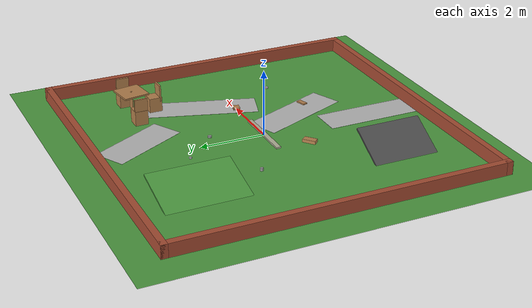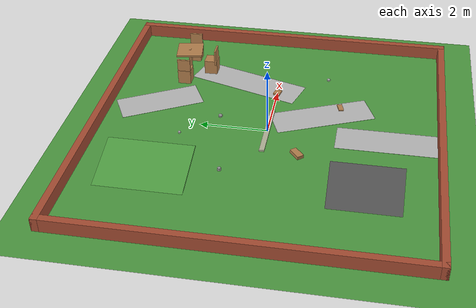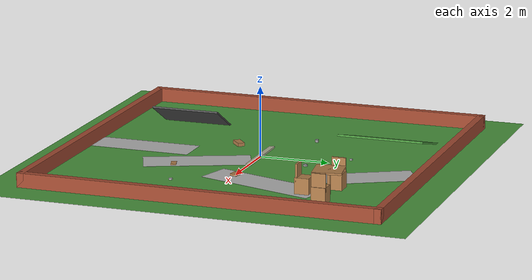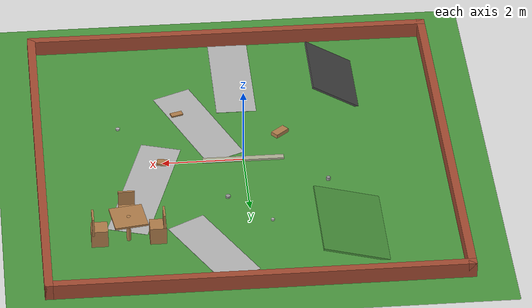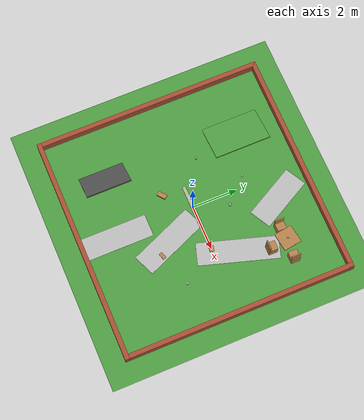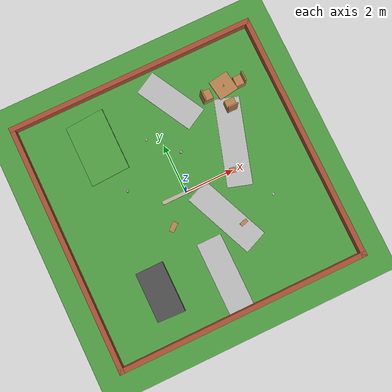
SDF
<?xml version="1.0" ?>
<sdf version="1.6">
  <world name="garden">

    <!-- Physics Engine Configuration                                        -->
    <!-- ODE solver, real-time factor 1.0, 1ms step for accurate contact     -->
    <physics type="ode">
      <real_time_update_rate>1000</real_time_update_rate>
      <max_step_size>0.001</max_step_size>
      <real_time_factor>1.0</real_time_factor>
      <ode>
        <solver>
          <type>quick</type>
          <iters>150</iters>
          <sor>1.3</sor>
        </solver>
        <constraints>
          <cfm>0.0</cfm>
          <erp>0.2</erp>
          <contact_max_correcting_vel>100</contact_max_correcting_vel>
          <contact_surface_layer>0.001</contact_surface_layer>
        </constraints>
      </ode>
    </physics>

    <!-- Lighting — Sun with shadows                                         -->
    <include>
      <uri>model://sun</uri>
    </include>

    <light name="garden_sun" type="directional">
      <pose>0 0 20 0 0 0</pose>
      <diffuse>0.9 0.9 0.85 1</diffuse>
      <specular>0.3 0.3 0.3 1</specular>
      <direction>-0.4 0.3 -1.0</direction>
      <cast_shadows>true</cast_shadows>
      <attenuation>
        <range>100</range>
      </attenuation>
    </light>

    <!-- Ambient fill light to soften shadows -->
    <light name="ambient_fill" type="directional">
      <pose>0 0 15 0 0 0</pose>
      <diffuse>0.2 0.2 0.25 1</diffuse>
      <specular>0.0 0.0 0.0 1</specular>
      <direction>0.2 -0.5 -0.8</direction>
      <cast_shadows>false</cast_shadows>
    </light>

    <!-- Ground Plane — Grass-textured flat area                             -->
    <model name="ground_plane">
      <static>true</static>
      <link name="link">
        <collision name="collision">
          <geometry>
            <plane>
              <normal>0 0 1</normal>
              <size>15 15</size>
            </plane>
          </geometry>
          <surface>
            <friction>
              <ode>
                <mu>1.0</mu>
                <mu2>1.0</mu2>
              </ode>
            </friction>
          </surface>
        </collision>
        <visual name="visual">
          <geometry>
            <plane>
              <normal>0 0 1</normal>
              <size>15 15</size>
            </plane>
          </geometry>
          <material>
            <script>
              <uri>file://media/materials/scripts/gazebo.material</uri>
              <name>Gazebo/Grass</name>
            </script>
          </material>
        </visual>
      </link>
    </model>

    <!-- Gravel Path — Winding path with lower friction (mu=0.6)             -->
    <!-- Built from several overlapping box segments to form a curve          -->

    <!-- Path segment 1: entrance from south wall heading north -->
    <model name="gravel_path_1">
      <static>true</static>
      <pose>0 -3.5 0.002 0 0 0</pose>
      <link name="link">
        <collision name="collision">
          <geometry>
            <box><size>1.0 3.0 0.004</size></box>
          </geometry>
          <surface>
            <friction>
              <ode>
                <mu>0.6</mu>
                <mu2>0.6</mu2>
              </ode>
            </friction>
          </surface>
        </collision>
        <visual name="visual">
          <geometry>
            <box><size>1.0 3.0 0.004</size></box>
          </geometry>
          <material>
            <script>
              <uri>file://media/materials/scripts/gazebo.material</uri>
              <name>Gazebo/Rocky</name>
            </script>
          </material>
        </visual>
      </link>
    </model>

    <!-- Path segment 2: curves east through the centre -->
    <model name="gravel_path_2">
      <static>true</static>
      <pose>1.0 -1.5 0.002 0 0 0.4</pose>
      <link name="link">
        <collision name="collision">
          <geometry>
            <box><size>1.0 3.0 0.004</size></box>
          </geometry>
          <surface>
            <friction>
              <ode>
                <mu>0.6</mu>
                <mu2>0.6</mu2>
              </ode>
            </friction>
          </surface>
        </collision>
        <visual name="visual">
          <geometry>
            <box><size>1.0 3.0 0.004</size></box>
          </geometry>
          <material>
            <script>
              <uri>file://media/materials/scripts/gazebo.material</uri>
              <name>Gazebo/Rocky</name>
            </script>
          </material>
        </visual>
      </link>
    </model>

    <!-- Path segment 3: continues north-east -->
    <model name="gravel_path_3">
      <static>true</static>
      <pose>2.5 1.0 0.002 0 0 -0.3</pose>
      <link name="link">
        <collision name="collision">
          <geometry>
            <box><size>1.0 3.5 0.004</size></box>
          </geometry>
          <surface>
            <friction>
              <ode>
                <mu>0.6</mu>
                <mu2>0.6</mu2>
              </ode>
            </friction>
          </surface>
        </collision>
        <visual name="visual">
          <geometry>
            <box><size>1.0 3.5 0.004</size></box>
          </geometry>
          <material>
            <script>
              <uri>file://media/materials/scripts/gazebo.material</uri>
              <name>Gazebo/Rocky</name>
            </script>
          </material>
        </visual>
      </link>
    </model>

    <!-- Path segment 4: curves west toward north wall -->
    <model name="gravel_path_4">
      <static>true</static>
      <pose>1.0 3.5 0.002 0 0 0.5</pose>
      <link name="link">
        <collision name="collision">
          <geometry>
            <box><size>1.0 2.5 0.004</size></box>
          </geometry>
          <surface>
            <friction>
              <ode>
                <mu>0.6</mu>
                <mu2>0.6</mu2>
              </ode>
            </friction>
          </surface>
        </collision>
        <visual name="visual">
          <geometry>
            <box><size>1.0 2.5 0.004</size></box>
          </geometry>
          <material>
            <script>
              <uri>file://media/materials/scripts/gazebo.material</uri>
              <name>Gazebo/Rocky</name>
            </script>
          </material>
        </visual>
      </link>
    </model>

    <!-- Gentle Slope — 15° incline for hill climbing test                    -->
    <!-- Located in the north-west corner of the garden                      -->
    <!-- EA-01 says park slopes are typically 5-15 degrees                    -->
    <model name="gentle_slope_15deg">
      <static>true</static>
      <!-- Tilted 15° around Y axis, raised so base meets ground plane -->
      <pose>-3.0 3.0 0 0 -0.2618 0</pose>
      <link name="link">
        <collision name="collision">
          <geometry>
            <box><size>3.0 2.5 0.05</size></box>
          </geometry>
          <surface>
            <friction>
              <ode>
                <mu>1.0</mu>
                <mu2>1.0</mu2>
              </ode>
            </friction>
          </surface>
        </collision>
        <visual name="visual">
          <geometry>
            <box><size>3.0 2.5 0.05</size></box>
          </geometry>
          <material>
            <script>
              <uri>file://media/materials/scripts/gazebo.material</uri>
              <name>Gazebo/GrassFloor</name>
            </script>
          </material>
        </visual>
      </link>
    </model>

    <!-- Steep Slope — 30° incline for max gradient testing                   -->
    <!-- EA-01 says max UK hillside slopes rarely exceed 30 degrees           -->
    <!-- Located south-west corner                                           -->
    <model name="steep_slope_30deg">
      <static>true</static>
      <!-- Tilted 30° around Y axis -->
      <pose>-3.0 -3.0 0 0 -0.5236 0</pose>
      <link name="link">
        <collision name="collision">
          <geometry>
            <box><size>2.5 2.0 0.05</size></box>
          </geometry>
          <surface>
            <friction>
              <ode>
                <mu>1.2</mu>
                <mu2>1.2</mu2>
              </ode>
            </friction>
          </surface>
        </collision>
        <visual name="visual">
          <geometry>
            <box><size>2.5 2.0 0.05</size></box>
          </geometry>
          <material>
            <script>
              <uri>file://media/materials/scripts/gazebo.material</uri>
              <name>Gazebo/DarkGrey</name>
            </script>
          </material>
        </visual>
      </link>
    </model>

    <!-- Obstacles — Various heights for suspension articulation testing      -->
    <!-- EA-01 specs:                                                         -->
    <!--   Phase 1 max obstacle: 60mm (0.4x scale, 80mm wheels)              -->
    <!--   Full-scale max obstacle: 150mm (200mm wheels)                      -->
    <!--   Practical kerb climbing: up to 75mm                               -->
    <!--   Test range: 40mm - 100mm                                          -->

    <!-- Small box obstacle: 40mm high — should be trivially handled -->
    <model name="obstacle_box_40mm">
      <static>true</static>
      <pose>1.5 -2.0 0.02 0 0 0.3</pose>
      <link name="link">
        <collision name="collision">
          <geometry>
            <box><size>0.3 0.15 0.04</size></box>
          </geometry>
        </collision>
        <visual name="visual">
          <geometry>
            <box><size>0.3 0.15 0.04</size></box>
          </geometry>
          <material>
            <script>
              <uri>file://media/materials/scripts/gazebo.material</uri>
              <name>Gazebo/Wood</name>
            </script>
          </material>
        </visual>
      </link>
    </model>

    <!-- Medium box obstacle: 60mm high — Phase 1 max obstacle limit -->
    <model name="obstacle_box_60mm">
      <static>true</static>
      <pose>2.0 0.0 0.03 0 0 -0.2</pose>
      <link name="link">
        <collision name="collision">
          <geometry>
            <box><size>0.25 0.2 0.06</size></box>
          </geometry>
        </collision>
        <visual name="visual">
          <geometry>
            <box><size>0.25 0.2 0.06</size></box>
          </geometry>
          <material>
            <script>
              <uri>file://media/materials/scripts/gazebo.material</uri>
              <name>Gazebo/Wood</name>
            </script>
          </material>
        </visual>
      </link>
    </model>

    <!-- Tall box obstacle: 100mm high — challenging, within full-scale capability -->
    <model name="obstacle_box_100mm">
      <static>true</static>
      <pose>-1.0 -1.0 0.05 0 0 0.7</pose>
      <link name="link">
        <collision name="collision">
          <geometry>
            <box><size>0.4 0.2 0.10</size></box>
          </geometry>
        </collision>
        <visual name="visual">
          <geometry>
            <box><size>0.4 0.2 0.10</size></box>
          </geometry>
          <material>
            <script>
              <uri>file://media/materials/scripts/gazebo.material</uri>
              <name>Gazebo/WoodFloor</name>
            </script>
          </material>
        </visual>
      </link>
    </model>

    <!-- Small cylinder obstacle: 50mm high, 120mm diameter — tests round contact -->
    <model name="obstacle_cylinder_50mm">
      <static>true</static>
      <pose>0.5 1.5 0.025 0 0 0</pose>
      <link name="link">
        <collision name="collision">
          <geometry>
            <cylinder>
              <radius>0.06</radius>
              <length>0.05</length>
            </cylinder>
          </geometry>
        </collision>
        <visual name="visual">
          <geometry>
            <cylinder>
              <radius>0.06</radius>
              <length>0.05</length>
            </cylinder>
          </geometry>
          <material>
            <script>
              <uri>file://media/materials/scripts/gazebo.material</uri>
              <name>Gazebo/Grey</name>
            </script>
          </material>
        </visual>
      </link>
    </model>

    <!-- Tall cylinder obstacle: 80mm high, 100mm diameter -->
    <model name="obstacle_cylinder_80mm">
      <static>true</static>
      <pose>-2.0 1.0 0.04 0 0 0</pose>
      <link name="link">
        <collision name="collision">
          <geometry>
            <cylinder>
              <radius>0.05</radius>
              <length>0.08</length>
            </cylinder>
          </geometry>
        </collision>
        <visual name="visual">
          <geometry>
            <cylinder>
              <radius>0.05</radius>
              <length>0.08</length>
            </cylinder>
          </geometry>
          <material>
            <script>
              <uri>file://media/materials/scripts/gazebo.material</uri>
              <name>Gazebo/Grey</name>
            </script>
          </material>
        </visual>
      </link>
    </model>

    <!-- Scattered small rocks: 40mm cylinders -->
    <model name="rock_1">
      <static>true</static>
      <pose>-0.5 2.5 0.02 0 0 0</pose>
      <link name="link">
        <collision name="collision">
          <geometry>
            <cylinder><radius>0.04</radius><length>0.04</length></cylinder>
          </geometry>
        </collision>
        <visual name="visual">
          <geometry>
            <cylinder><radius>0.04</radius><length>0.04</length></cylinder>
          </geometry>
          <material>
            <script>
              <uri>file://media/materials/scripts/gazebo.material</uri>
              <name>Gazebo/Rocky</name>
            </script>
          </material>
        </visual>
      </link>
    </model>

    <model name="rock_2">
      <static>true</static>
      <pose>3.0 -1.5 0.02 0 0 0</pose>
      <link name="link">
        <collision name="collision">
          <geometry>
            <cylinder><radius>0.05</radius><length>0.04</length></cylinder>
          </geometry>
        </collision>
        <visual name="visual">
          <geometry>
            <cylinder><radius>0.05</radius><length>0.04</length></cylinder>
          </geometry>
          <material>
            <script>
              <uri>file://media/materials/scripts/gazebo.material</uri>
              <name>Gazebo/Rocky</name>
            </script>
          </material>
        </visual>
      </link>
    </model>

    <!-- Kerb/Step — 50mm high for wheel climbing test                        -->
    <!-- EA-01: standard UK dropped kerb 15-25mm, testing at 50mm            -->
    <!-- Full-width step the rover must drive over                           -->
    <model name="kerb_step_50mm">
      <static>true</static>
      <pose>0.0 0.0 0.025 0 0 0</pose>
      <link name="link">
        <collision name="collision">
          <geometry>
            <box><size>2.0 0.15 0.05</size></box>
          </geometry>
          <surface>
            <friction>
              <ode>
                <mu>0.8</mu>
                <mu2>0.8</mu2>
              </ode>
            </friction>
          </surface>
        </collision>
        <visual name="visual">
          <geometry>
            <box><size>2.0 0.15 0.05</size></box>
          </geometry>
          <material>
            <script>
              <uri>file://media/materials/scripts/gazebo.material</uri>
              <name>Gazebo/Residential</name>
            </script>
          </material>
        </visual>
      </link>
    </model>

    <!-- Garden Furniture — Simple box models                                 -->
    <!-- Table: 0.8m x 0.8m x 0.75m high                                    -->
    <!-- Chairs: 0.4m x 0.4m x 0.45m seat height                            -->
    <!-- These act as large static obstacles the rover must navigate around   -->

    <!-- Garden table -->
    <model name="garden_table">
      <static>true</static>
      <pose>3.0 3.0 0.375 0 0 0.15</pose>
      <link name="link">
        <!-- Table top -->
        <collision name="tabletop_collision">
          <pose>0 0 0.325 0 0 0</pose>
          <geometry>
            <box><size>0.8 0.8 0.05</size></box>
          </geometry>
        </collision>
        <visual name="tabletop_visual">
          <pose>0 0 0.325 0 0 0</pose>
          <geometry>
            <box><size>0.8 0.8 0.05</size></box>
          </geometry>
          <material>
            <script>
              <uri>file://media/materials/scripts/gazebo.material</uri>
              <name>Gazebo/Wood</name>
            </script>
          </material>
        </visual>
        <!-- Table leg (single central pedestal for simplicity) -->
        <collision name="leg_collision">
          <geometry>
            <cylinder>
              <radius>0.05</radius>
              <length>0.70</length>
            </cylinder>
          </geometry>
        </collision>
        <visual name="leg_visual">
          <geometry>
            <cylinder>
              <radius>0.05</radius>
              <length>0.70</length>
            </cylinder>
          </geometry>
          <material>
            <script>
              <uri>file://media/materials/scripts/gazebo.material</uri>
              <name>Gazebo/Wood</name>
            </script>
          </material>
        </visual>
      </link>
    </model>

    <!-- Chair 1 — near table -->
    <model name="garden_chair_1">
      <static>true</static>
      <pose>2.3 3.0 0.225 0 0 0</pose>
      <link name="link">
        <!-- Seat -->
        <collision name="seat_collision">
          <geometry>
            <box><size>0.4 0.4 0.45</size></box>
          </geometry>
        </collision>
        <visual name="seat_visual">
          <geometry>
            <box><size>0.4 0.4 0.45</size></box>
          </geometry>
          <material>
            <script>
              <uri>file://media/materials/scripts/gazebo.material</uri>
              <name>Gazebo/WoodFloor</name>
            </script>
          </material>
        </visual>
        <!-- Backrest -->
        <collision name="back_collision">
          <pose>-0.15 0 0.35 0 0 0</pose>
          <geometry>
            <box><size>0.05 0.4 0.5</size></box>
          </geometry>
        </collision>
        <visual name="back_visual">
          <pose>-0.15 0 0.35 0 0 0</pose>
          <geometry>
            <box><size>0.05 0.4 0.5</size></box>
          </geometry>
          <material>
            <script>
              <uri>file://media/materials/scripts/gazebo.material</uri>
              <name>Gazebo/WoodFloor</name>
            </script>
          </material>
        </visual>
      </link>
    </model>

    <!-- Chair 2 — opposite side of table -->
    <model name="garden_chair_2">
      <static>true</static>
      <pose>3.7 3.0 0.225 0 0 3.14159</pose>
      <link name="link">
        <collision name="seat_collision">
          <geometry>
            <box><size>0.4 0.4 0.45</size></box>
          </geometry>
        </collision>
        <visual name="seat_visual">
          <geometry>
            <box><size>0.4 0.4 0.45</size></box>
          </geometry>
          <material>
            <script>
              <uri>file://media/materials/scripts/gazebo.material</uri>
              <name>Gazebo/WoodFloor</name>
            </script>
          </material>
        </visual>
        <collision name="back_collision">
          <pose>-0.15 0 0.35 0 0 0</pose>
          <geometry>
            <box><size>0.05 0.4 0.5</size></box>
          </geometry>
        </collision>
        <visual name="back_visual">
          <pose>-0.15 0 0.35 0 0 0</pose>
          <geometry>
            <box><size>0.05 0.4 0.5</size></box>
          </geometry>
          <material>
            <script>
              <uri>file://media/materials/scripts/gazebo.material</uri>
              <name>Gazebo/WoodFloor</name>
            </script>
          </material>
        </visual>
      </link>
    </model>

    <!-- Chair 3 — side of table -->
    <model name="garden_chair_3">
      <static>true</static>
      <pose>3.0 2.3 0.225 0 0 1.5708</pose>
      <link name="link">
        <collision name="seat_collision">
          <geometry>
            <box><size>0.4 0.4 0.45</size></box>
          </geometry>
        </collision>
        <visual name="seat_visual">
          <geometry>
            <box><size>0.4 0.4 0.45</size></box>
          </geometry>
          <material>
            <script>
              <uri>file://media/materials/scripts/gazebo.material</uri>
              <name>Gazebo/WoodFloor</name>
            </script>
          </material>
        </visual>
        <collision name="back_collision">
          <pose>-0.15 0 0.35 0 0 0</pose>
          <geometry>
            <box><size>0.05 0.4 0.5</size></box>
          </geometry>
        </collision>
        <visual name="back_visual">
          <pose>-0.15 0 0.35 0 0 0</pose>
          <geometry>
            <box><size>0.05 0.4 0.5</size></box>
          </geometry>
          <material>
            <script>
              <uri>file://media/materials/scripts/gazebo.material</uri>
              <name>Gazebo/WoodFloor</name>
            </script>
          </material>
        </visual>
      </link>
    </model>

    <!-- Boundary Walls — Low garden walls forming ~10m x 10m test area      -->
    <!-- Wall height: 0.4m (low enough to see over, tall enough to contain)  -->
    <!-- Wall thickness: 0.2m (standard brick width)                         -->

    <!-- North wall -->
    <model name="wall_north">
      <static>true</static>
      <pose>0 5.0 0.2 0 0 0</pose>
      <link name="link">
        <collision name="collision">
          <geometry>
            <box><size>10.2 0.2 0.4</size></box>
          </geometry>
        </collision>
        <visual name="visual">
          <geometry>
            <box><size>10.2 0.2 0.4</size></box>
          </geometry>
          <material>
            <script>
              <uri>file://media/materials/scripts/gazebo.material</uri>
              <name>Gazebo/Bricks</name>
            </script>
          </material>
        </visual>
      </link>
    </model>

    <!-- South wall -->
    <model name="wall_south">
      <static>true</static>
      <pose>0 -5.0 0.2 0 0 0</pose>
      <link name="link">
        <collision name="collision">
          <geometry>
            <box><size>10.2 0.2 0.4</size></box>
          </geometry>
        </collision>
        <visual name="visual">
          <geometry>
            <box><size>10.2 0.2 0.4</size></box>
          </geometry>
          <material>
            <script>
              <uri>file://media/materials/scripts/gazebo.material</uri>
              <name>Gazebo/Bricks</name>
            </script>
          </material>
        </visual>
      </link>
    </model>

    <!-- East wall -->
    <model name="wall_east">
      <static>true</static>
      <pose>5.0 0 0.2 0 0 0</pose>
      <link name="link">
        <collision name="collision">
          <geometry>
            <box><size>0.2 10.2 0.4</size></box>
          </geometry>
        </collision>
        <visual name="visual">
          <geometry>
            <box><size>0.2 10.2 0.4</size></box>
          </geometry>
          <material>
            <script>
              <uri>file://media/materials/scripts/gazebo.material</uri>
              <name>Gazebo/Bricks</name>
            </script>
          </material>
        </visual>
      </link>
    </model>

    <!-- West wall -->
    <model name="wall_west">
      <static>true</static>
      <pose>-5.0 0 0.2 0 0 0</pose>
      <link name="link">
        <collision name="collision">
          <geometry>
            <box><size>0.2 10.2 0.4</size></box>
          </geometry>
        </collision>
        <visual name="visual">
          <geometry>
            <box><size>0.2 10.2 0.4</size></box>
          </geometry>
          <material>
            <script>
              <uri>file://media/materials/scripts/gazebo.material</uri>
              <name>Gazebo/Bricks</name>
            </script>
          </material>
        </visual>
      </link>
    </model>

    <!-- Camera — Default viewpoint looking down at the garden               -->
    <gui fullscreen="0">
      <camera name="user_camera">
        <pose>-6.0 -6.0 8.0 0 0.7 0.8</pose>
        <view_controller>orbit</view_controller>
      </camera>
    </gui>

  </world>
</sdf>
